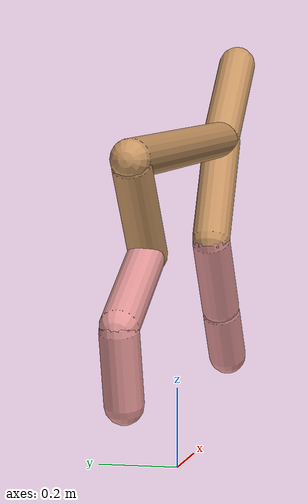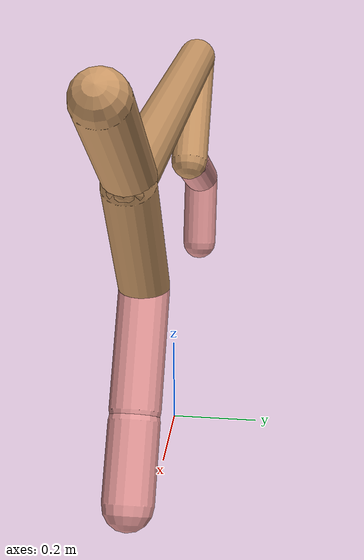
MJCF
<mujoco model="cheetah">
  <compiler angle="radian" coordinate="local" inertiafromgeom="true" settotalmass="14" />
  <default>
    <joint armature=".1" damping=".01" limited="true" solimplimit="0 .8 .03" solreflimit=".02 1" stiffness="8" />
    <geom conaffinity="0" condim="3" contype="1" friction="0.8 .1 .1" rgba="0.8 0.6 .4 1" solimp="0.0 0.8 0.01" solref="0.02 1" />
    <motor ctrllimited="true" ctrlrange="-1 1" />
  </default>
  <size nstack="300000" nuser_geom="1" />
  <option gravity="0 0 -9.81" timestep="0.01" />
  <worldbody>
    <body name="torso" pos="0.0 0.0 0.7909766774016759">
      <joint armature="0" axis="1 0 0" damping="0" limited="false" name="ignorex" pos="0 0 0" stiffness="0" type="slide" />
      <joint armature="0" axis="0 0 1" damping="0" limited="false" name="ignorez" pos="0 0 0" stiffness="0" type="slide" />
      <joint armature="0" axis="0 1 0" damping="0" limited="false" name="ignorey" pos="0 0 0" stiffness="0" type="hinge" />
      <geom fromto="-0.5 0.0 0.0 0.5720452538223847 0.0 0.0" name="torso" size="0.04731280577571406" type="capsule" />
      <geom axisangle="0 1 0 .87" name="head" pos="0.6720452538223846 0.0 0.1" size="0.04926837705039853 0.15" type="capsule" />

      <body name="bthigh" pos="-.5 0 0">
        <joint axis="0 1 0" damping="6" name="bthigh" pos="0 0 0" range="-.52 1.05" stiffness="240" type="hinge" />
        <geom axisangle="0 1 0 -3.8" name="bthigh" pos="0.09515747390872722 0.0 -0.12370471608134538" size="0.04589693635534107 0.1370576666803055" type="capsule" />
        <body name="bshin" pos="0.15031494781745444 0.0 -0.23740943216269075">
          <joint axis="0 1 0" damping="4.5" name="bshin" pos="0 0 0" range="-.785 .785" stiffness="180" type="hinge" />
          <geom axisangle="0 1 0 -2.03" name="bshin" pos="-0.13265120115746273 0.0 -0.06632560057873137" rgba="0.9 0.6 0.6 1" size="0.04589693635534107 0.14178379311755743" type="capsule" />
          <body name="bfoot" pos="-0.26530240231492547 0.0 -0.13265120115746273">
            <joint axis="0 1 0" damping="3" name="bfoot" pos="0 0 0" range="-.4 .785" stiffness="120" type="hinge" />
            <geom axisangle="0 1 0 -.27" name="bfoot" pos="0.0284786787008239 0.0 -0.09208106113266394" rgba="0.9 0.6 0.6 1" size="0.04589693635534107 0.08885117702033599" type="capsule" />
            <inertial mass="10" />
          </body>
        </body>
      </body>
      <body name="fthigh" pos="0.5720452538223846 0.0 0.0">
        <joint axis="0 1 0" damping="4.5" name="fthigh" pos="0 0 0" range="-1.5 0.8" stiffness="180" type="hinge" />
        <geom axisangle="0 1 0 .52" name="fthigh" pos="-0.07637739336984709 0.0 -0.13093267434830927" size="0.04988803963036036 0.14565679716989843" type="capsule" />
        <body name="fshin" pos="-0.15275478673969417 0.0 -0.26186534869661854">
          <joint axis="0 1 0" damping="3" name="fshin" pos="0 0 0" range="-1.2 1.1" stiffness="120" type="hinge" />
          <geom axisangle="0 1 0 -.6" name="fshin" pos="0.07090606112480716 0.0 -0.09817762309588682" rgba="0.9 0.6 0.6 1" size="0.04988803963036036 0.11608737218052054" type="capsule" />
          <body name="ffoot" pos="0.14181212224961431 0.0 -0.19635524619177364">
            <joint axis="0 1 0" damping="1.5" name="ffoot" pos="0 0 0" range="-3.1 -0.3" stiffness="60" type="hinge" />
            <geom axisangle="0 1 0 -.6" name="ffoot" pos="0.04860224165859883 0.0 -0.07560348702448708" rgba="0.9 0.6 0.6 1" size="0.04988803963036036 0.07666147219468339" type="capsule" />
            <inertial mass="10" />
          </body>
        </body>
      </body>
    </body>
  </worldbody>
  <actuator>
    <motor gear="120" joint="bthigh" name="bthigh" />
    <motor gear="90" joint="bshin" name="bshin" />
    <motor gear="60" joint="bfoot" name="bfoot" />
    <motor gear="120" joint="fthigh" name="fthigh" />
    <motor gear="60" joint="fshin" name="fshin" />
    <motor gear="30" joint="ffoot" name="ffoot" />
  </actuator>
</mujoco>
